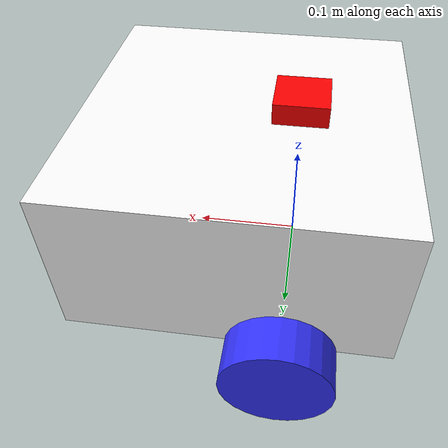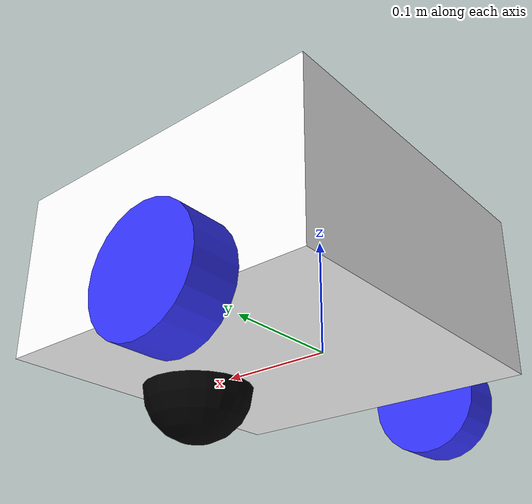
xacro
<?xml version="1.0"?>
<robot xmlns:xacro="http://www.ros.org/wiki/xacro"  name="robot">

    <!-- Example link -->

    <xacro:include filename="robot_core.xacro" />
    <xacro:include filename="gazebo_control.xacro" />
    <xacro:include filename="lidar.xacro" />
    <xacro:include filename="camara_profundidad.xacro" />

</robot>

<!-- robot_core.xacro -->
<robot xmlns:xacro="http://www.ros.org/wiki/xacro"  >

    <xacro:include filename="inertial_macros.xacro"/>

    <!-- Example link -->

    <!-- Colores de los materiales a ocupar en el archivo URFD-->
    <material name="white">
        <color rgba="1 1 1 1" />
    </material>

    <material name="orange">
        <color rgba="1 0.3 0.1 1"/>
    </material>

    <material name="blue">
        <color rgba="0.2 0.2 1 1"/>
    </material>

    <material name="black">
        <color rgba="0 0 0 1"/>
    </material>

    <material name="red">
        <color rgba="1 0 0 1"/>
    </material>

    <!-- CUERPO DEL ROBOT-->
    <!-- Enlace base estandar para cualquier archivo inicial de URFD-->
    <link name="base_link">

    </link>

    <!-- Union de enlace y chasis para el armado del prototipo-->
    <joint name="chasis_union" type="fixed">
        <parent link="base_link"/><!-- Clase padre-->
        <child link="chasis"/><!-- Clase hija-->
        <origin xyz="-0.1 0 0"/><!-- Centro del mundo-->
    </joint>

    <!-- Chasis del prototipo-->
    <link name="chasis">
         <visual>
            <origin xyz="0.15 0 0.075"/>
            <geometry>
                <box size="0.3 0.3 0.15"/>
            </geometry>
            <material name="white"/>
        </visual>
        <collision>
            <origin xyz="0.15 0 0.075"/>
            <geometry>
                <box size="0.3 0.3 0.15"/>
            </geometry>
        </collision>
        <xacro:inertial_box mass="0.5" x="0.3" y="0.3" z="0.15">
            <origin xyz="0.15 0 0.075" rpy="0 0 0"/>
        </xacro:inertial_box>
    </link>

    <!-- Valores necesarios para iniciar materiales dentro de un ambiente en Gazebo-->
    <gazebo reference="chasis">
        <material>Gazebo/White</material>
    </gazebo>

    <!-- RUEDAS DEL ROBOT-->

    <!-- Rueda Izquierda trasera-->
    <joint name="rueda_izquierda_union" type="continuous">
        <parent link="base_link"/><!-- Clase padre-->
        <child link="rueda_izq"/><!-- Clase hija-->
        <origin xyz="0 0.175 0" rpy="-${pi/2} 0 0"/><!-- Posicion de la rueda y su balanceo (rpy)-->
        <axis xyz="0 0 1"/> <!-- Sentido del giro de la rueda-->
    </joint>

    <link name="rueda_izq">
        <visual>
            <geometry>
                <cylinder radius="0.05" length="0.04"/>
            </geometry>
            <material name="blue"/>
        </visual>
        <collision>
            <geometry>
                <cylinder radius="0.05" length="0.04"/>
            </geometry>
        </collision>
        <xacro:inertial_cylinder mass="0.1" length="0.04" radius="0.05">
            <origin xyz="0 0 0" rpy="0 0 0"/>
        </xacro:inertial_cylinder>
    </link>

    <gazebo reference="rueda_izq">
        <material>
            Gazebo/Blue
        </material>
    </gazebo>

    <!-- Rueda Derecha trasera-->
    <joint name="rueda_derecha_union" type="continuous">
        <parent link="base_link"/><!-- Clase padre-->
        <child link="rueda_der"/><!-- Clase hija-->
        <origin xyz="0 -0.175 0" rpy="${pi/2} 0 0"/><!-- Centro del mundo-->
        <axis xyz="0 0 -1"/>
    </joint>

    <link name="rueda_der">
        <visual>
            <geometry>
                <cylinder radius="0.05" length="0.04"/>
            </geometry>
            <material name="blue"/>
        </visual>
        <collision>
            <geometry>
                <cylinder radius="0.05" length="0.04"/>
            </geometry>
        </collision>
        <xacro:inertial_cylinder mass="0.1" length="0.04" radius="0.05">
            <origin xyz="0 0 0" rpy="0 0 0"/>
        </xacro:inertial_cylinder>
    </link>
    <gazebo reference="rueda_der">
        <material>
            Gazebo/Blue
        </material>
    </gazebo>

    <joint name="caster_wheel_joint" type="fixed">
        <parent link="chasis"/>
        <child link="caster_wheel"/>
        <origin xyz="0.24 0 0"/>
    </joint>

    <link name="caster_wheel">
        <visual>
            <geometry>
                <sphere radius="0.05"/>
            </geometry>
            <material name="black"/>
        </visual>
        <collision>
            <geometry>
                <sphere radius="0.05"/>
            </geometry>
        </collision>
        <xacro:inertial_sphere mass="0.1" radius="0.05">
            <origin xyz="0 0 0" rpy="0 0 0"/>
        </xacro:inertial_sphere>
    </link>

    <gazebo reference="caster_wheel">
        <material>Gazebo/Black</material>
        <mu1 value="0.001"/>
        <mu2 value="0.001"/>
    </gazebo>

</robot>

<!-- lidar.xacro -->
<robot xmlns:xacro="http://www.ros.org/wiki/xacro"  name="robot">

    <joint name="sensor_lidar_union" type="fixed">
        <parent link="chasis"/>
        <child link="sensor_lidar"/>
        <origin xyz="0.1 0 0.16" rpy="0 0 0"/>
    </joint>

    <link name="sensor_lidar">
         <visual>
            <geometry>
                <box size="0.05 0.05 0.02"/>
            </geometry>
            <material name="red"/>
        </visual>
        <collision>
            <geometry>
                <box size="0.03 0.03 0.015"/>
            </geometry>
        </collision>
        <xacro:inertial_box mass="0.01" x="0.04" y="0.03" z="0.015">
            <origin xyz="0 0 0" rpy="0 0 0"/>
        </xacro:inertial_box>
    </link>

    <gazebo reference="sensor_lidar">
        <material>Gazebo/Red</material>
        <sensor name="laser" type="ray"><!-- Tipo de sensor a utilizar, en este caso LASER-->
            <pose> 0 0 0 0 0 0 </pose><!-- Punto de referencia para el sensor-->
            <visualize>false</visualize><!-- Visualizacion dentro del entorno-->
            <update_rate>10</update_rate><!-- Tasa de actualizacion del sensor (cada 10 segundos para el ejemplo-->
            <ray>
                <scan>
                    <horizontal>
                        <samples>360</samples>
                        <min_angle>-3.14</min_angle>
                        <max_angle>3.14</max_angle>
                    </horizontal>
                </scan>
                <range>
                    <min>0.3</min>
                    <max>12</max>
                </range>
            </ray>
            <plugin name="laser_controller" filename="libgazebo_ros_ray_sensor.so"><!-- Controladores estandar de ROS para la visualizacion en GAZEBO-->
                <ros>
                    <argument>--ros-args --remap ~/out:=scan</argument><!-- Argumento para lanzamiento del archivo dentro de ROS-->
                </ros>
                <output_type>sensor_msgs/LaserScan</output_type><!-- Tipo de mensaje de salida-->
                <frame_name>sensor_lidar</frame_name>
            </plugin>
        </sensor>
    </gazebo>

</robot>

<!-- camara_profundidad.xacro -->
<robot xmlns:xacro="http://www.ros.org/wiki/xacro"  name="robot">

    <joint name="camara_union" type="fixed">
        <parent link="chasis"/>
        <child link="camara_vinculo"/>
        <origin xyz="0.305 0 0.08" rpy="0 0 0"/>
    </joint>

    <link name="camara_vinculo">
         <visual>
            <geometry>
                <box size="0.01 0.03 0.03"/>
            </geometry>
            <material name="black"/>
        </visual>
    </link>

    <joint name="camara_optical_union" type="fixed">
        <parent link="camara_vinculo"/>
        <child link="camara_optical_vinculo"/>
        <origin xyz="0 0 0" rpy="${-pi/2} 0 ${-pi/2}"/>
    </joint>

    <link name="camara_optical_vinculo"></link>

    <gazebo reference="camara_vinculo">
        <material>Gazebo/Red</material>
        <sensor name="camera" type="depth"><!-- Tipo de sensor a utilizar, en este caso LASER-->
            <pose> 0 0 0 0 0 0 </pose><!-- Punto de referencia para el sensor-->
            <visualize>true</visualize><!-- Visualizacion dentro del entorno-->
            <update_rate>10</update_rate><!-- Tasa de actualizacion del sensor (cada 10 segundos para el ejemplo-->
            <camera>
                <horizontal_fov>1.089</horizontal_fov><!--Se estipula el ancho (o angulo de vision) de la camara en radianes-->
                <image>
                    <format>B8G8R8</format><!-- Sistema BGR de 8 bits, cambio de sistema por la camara de profundidad-->
                    <width>640</width><!-- Amcho y largo de la visualizacion de la camara-->
                    <height>480</height>
                </image>
                <clip><!-- Cercania y alejamiento que la camara sera capaz de captar-->
                    <near>0.05</near><!-- 50 milimetros lo mas cercano que puede visualizar-->
                    <far>8.0</far><!-- 8 metros lo mas lejano que puede visualizar-->
                </clip>
            </camera>
            <plugin name="camara_controller" filename="libgazebo_ros_camera.so"><!-- Controladores estandar de ROS para la visualizacion en GAZEBO-->
                <frame_name>camara_optical_vinculo</frame_name>
                <!-- Ingreso de límites para poder visualizar la cámara dentro de rviz2-->
                <min_depth>0.1</min_depth>
                <max_depth>100.0</max_depth>
            </plugin>
        </sensor>
    </gazebo>

</robot>
